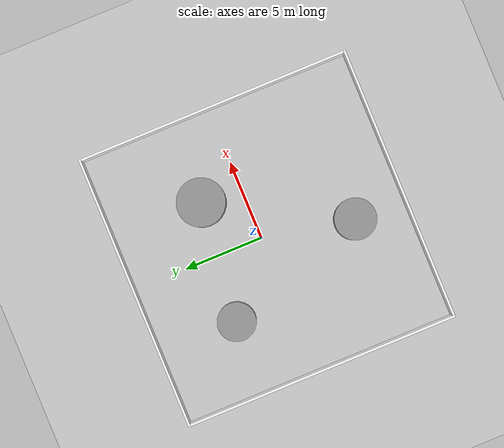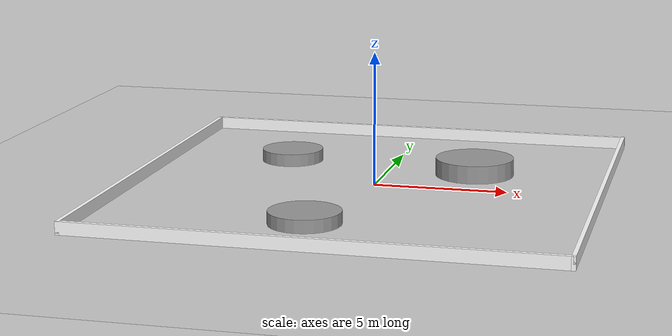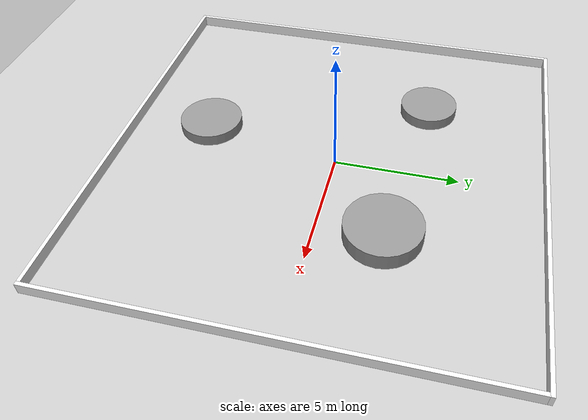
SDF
<?xml version="1.0" ?>

<sdf version="1.6">
	<world name="default">
		<!-- A global light source -->
		<include>
			<uri>model://sun</uri>
		</include>

		<!-- A ground plane -->
		<include>
			<uri>model://ground_plane</uri>
		</include>
        <physics type="ode">
        <real_time_update_rate>100.0</real_time_update_rate>
        <max_step_size>0.01</max_step_size>
        <real_time_factor>0.5</real_time_factor>
        <ode>
            <solver>
            <type>quick</type>
            <iters>150</iters>
            <precon_iters>0</precon_iters>
            <sor>1.400000</sor>
            <use_dynamic_moi_rescaling>1</use_dynamic_moi_rescaling>
            </solver>
            <constraints>
            <cfm>0.00001</cfm>
            <erp>0.2</erp>
            <contact_max_correcting_vel>2000.000000</contact_max_correcting_vel>
            <contact_surface_layer>0.01000</contact_surface_layer>
            </constraints>
        </ode>
        </physics>

        <!-- Our custom model -->
		<include>
			<uri>model://3cylinder</uri>
		</include>

        <scene>
        <ambient>0.4 0.4 0.4 1</ambient>
        <background>0.7 0.7 0.7 1</background>
        <shadows>false</shadows>
        </scene>

	</world>
</sdf>

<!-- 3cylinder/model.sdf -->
<sdf version='1.6'>
  <model name='3cylinder'>
    <link name='link_0'>
      <inertial>
        <mass>1</mass>
        <inertia>
          <ixx>0.145833</ixx>
          <ixy>0</ixy>
          <ixz>0</ixz>
          <iyy>0.145833</iyy>
          <iyz>0</iyz>
          <izz>0.125</izz>
        </inertia>
        <pose frame=''>0 0 0 0 -0 0</pose>
      </inertial>
      <pose frame=''>-0.12002 -0.189321 -0.050541 0 -0 0</pose>
      <gravity>1</gravity>
      <self_collide>0</self_collide>
      <kinematic>0</kinematic>
      <enable_wind>0</enable_wind>
      <visual name='visual'>
        <pose frame=''>-1 -5.5 0 0 -0 0</pose>
        <geometry>
          <cylinder>
            <radius>1.3</radius>
            <length>1</length>
          </cylinder>
        </geometry>
        <material>
          <lighting>1</lighting>
          <script>
            <uri>file://media/materials/scripts/gazebo.material</uri>
            <name>Gazebo/Grey</name>
          </script>
          <shader type='pixel'>
            <normal_map>__default__</normal_map>
          </shader>
          <ambient>0.3 0.3 0.3 1</ambient>
          <diffuse>0.7 0.7 0.7 1</diffuse>
          <specular>0.01 0.01 0.01 1</specular>
          <emissive>0 0 0 1</emissive>
        </material>
        <transparency>0</transparency>
        <cast_shadows>1</cast_shadows>
      </visual>
      <collision name='collision'>
        <laser_retro>0</laser_retro>
        <max_contacts>10</max_contacts>
        <pose frame=''>-1 -5.5 0 0 -0 0</pose>
        <geometry>
          <cylinder>
            <radius>1.3</radius>
            <length>1</length>
          </cylinder>
        </geometry>
        <surface>
          <friction>
            <ode>
              <mu>1</mu>
              <mu2>1</mu2>
              <fdir1>0 0 0</fdir1>
              <slip1>0</slip1>
              <slip2>0</slip2>
            </ode>
            <torsional>
              <coefficient>1</coefficient>
              <patch_radius>0</patch_radius>
              <surface_radius>0</surface_radius>
              <use_patch_radius>1</use_patch_radius>
              <ode>
                <slip>0</slip>
              </ode>
            </torsional>
          </friction>
          <bounce>
            <restitution_coefficient>0</restitution_coefficient>
            <threshold>1e+06</threshold>
          </bounce>
          <contact>
            <collide_without_contact>0</collide_without_contact>
            <collide_without_contact_bitmask>1</collide_without_contact_bitmask>
            <collide_bitmask>1</collide_bitmask>
            <ode>
              <soft_cfm>0</soft_cfm>
              <soft_erp>0.2</soft_erp>
              <kp>1e+13</kp>
              <kd>1</kd>
              <max_vel>0.01</max_vel>
              <min_depth>0</min_depth>
            </ode>
            <bullet>
              <split_impulse>1</split_impulse>
              <split_impulse_penetration_threshold>-0.01</split_impulse_penetration_threshold>
              <soft_cfm>0</soft_cfm>
              <soft_erp>0.2</soft_erp>
              <kp>1e+13</kp>
              <kd>1</kd>
            </bullet>
          </contact>
        </surface>
      </collision>
    </link>
    <link name='link_1'>
      <inertial>
        <mass>1</mass>
        <inertia>
          <ixx>0.145833</ixx>
          <ixy>0</ixy>
          <ixz>0</ixz>
          <iyy>0.145833</iyy>
          <iyz>0</iyz>
          <izz>0.125</izz>
        </inertia>
        <pose frame=''>0 0 0 0 -0 0</pose>
      </inertial>
      <pose frame=''>-0.12002 -0.189321 -0.050541 0 -0 0</pose>
      <gravity>1</gravity>
      <self_collide>0</self_collide>
      <kinematic>0</kinematic>
      <enable_wind>0</enable_wind>
      <visual name='visual'>
        <pose frame=''>-4 3.5 0 0 -0 0</pose>
        <geometry>
          <cylinder>
            <radius>1.2</radius>
            <length>1</length>
          </cylinder>
        </geometry>
        <material>
          <lighting>1</lighting>
          <script>
            <uri>file://media/materials/scripts/gazebo.material</uri>
            <name>Gazebo/Grey</name>
          </script>
          <shader type='pixel'>
            <normal_map>__default__</normal_map>
          </shader>
          <ambient>0.3 0.3 0.3 1</ambient>
          <diffuse>0.7 0.7 0.7 1</diffuse>
          <specular>0.01 0.01 0.01 1</specular>
          <emissive>0 0 0 1</emissive>
        </material>
        <transparency>0</transparency>
        <cast_shadows>1</cast_shadows>
      </visual>
      <collision name='collision'>
        <laser_retro>0</laser_retro>
        <max_contacts>10</max_contacts>
        <pose frame=''>-4 3.5 0 0 -0 0</pose>
        <geometry>
          <cylinder>
            <radius>1.2</radius>
            <length>1</length>
          </cylinder>
        </geometry>
        <surface>
          <friction>
            <ode>
              <mu>1</mu>
              <mu2>1</mu2>
              <fdir1>0 0 0</fdir1>
              <slip1>0</slip1>
              <slip2>0</slip2>
            </ode>
            <torsional>
              <coefficient>1</coefficient>
              <patch_radius>0</patch_radius>
              <surface_radius>0</surface_radius>
              <use_patch_radius>1</use_patch_radius>
              <ode>
                <slip>0</slip>
              </ode>
            </torsional>
          </friction>
          <bounce>
            <restitution_coefficient>0</restitution_coefficient>
            <threshold>1e+06</threshold>
          </bounce>
          <contact>
            <collide_without_contact>0</collide_without_contact>
            <collide_without_contact_bitmask>1</collide_without_contact_bitmask>
            <collide_bitmask>1</collide_bitmask>
            <ode>
              <soft_cfm>0</soft_cfm>
              <soft_erp>0.2</soft_erp>
              <kp>1e+13</kp>
              <kd>1</kd>
              <max_vel>0.01</max_vel>
              <min_depth>0</min_depth>
            </ode>
            <bullet>
              <split_impulse>1</split_impulse>
              <split_impulse_penetration_threshold>-0.01</split_impulse_penetration_threshold>
              <soft_cfm>0</soft_cfm>
              <soft_erp>0.2</soft_erp>
              <kp>1e+13</kp>
              <kd>1</kd>
            </bullet>
          </contact>
        </surface>
      </collision>
    </link>
    <model name='large'>
      <link name='fixed'>
        <self_collide>0</self_collide>
        <enable_wind>0</enable_wind>
        <kinematic>0</kinematic>
        <pose frame=''>0 0 0 0 -0 0</pose>
      </link>
      <link name='Wall_0'>
        <pose frame=''>0 8.64 0 0 -0 0</pose>
        <self_collide>0</self_collide>
        <enable_wind>0</enable_wind>
        <kinematic>0</kinematic>
        <visual name='Wall_0_Visual'>
          <pose frame=''>0 0 0.25 0 -0 0</pose>
          <geometry>
            <box>
              <size>17.43 0.15 0.5</size>
            </box>
          </geometry>
          <material>
            <ambient>1 1 1 1</ambient>
            <shader type='pixel'/>
            <script>
              <name>ModelPreview_1::Wall_0::Wall_0_Visual_MATERIAL_</name>
              <uri>__default__</uri>
            </script>
          </material>
          <transparency>0</transparency>
          <cast_shadows>1</cast_shadows>
        </visual>
        <collision name='Wall_0_Collision'>
          <laser_retro>0</laser_retro>
          <max_contacts>10</max_contacts>
          <pose frame=''>0 0 0.25 0 -0 0</pose>
          <geometry>
            <box>
              <size>17.43 0.15 0.5</size>
            </box>
          </geometry>
          <surface>
            <friction>
              <ode>
                <mu>1</mu>
                <mu2>1</mu2>
                <fdir1>0 0 0</fdir1>
                <slip1>0</slip1>
                <slip2>0</slip2>
              </ode>
              <torsional>
                <coefficient>1</coefficient>
                <patch_radius>0</patch_radius>
                <surface_radius>0</surface_radius>
                <use_patch_radius>1</use_patch_radius>
                <ode>
                  <slip>0</slip>
                </ode>
              </torsional>
            </friction>
            <bounce>
              <restitution_coefficient>0</restitution_coefficient>
              <threshold>1e+06</threshold>
            </bounce>
            <contact>
              <collide_without_contact>0</collide_without_contact>
              <collide_without_contact_bitmask>1</collide_without_contact_bitmask>
              <collide_bitmask>1</collide_bitmask>
              <ode>
                <soft_cfm>0</soft_cfm>
                <soft_erp>0.2</soft_erp>
                <kp>1e+13</kp>
                <kd>1</kd>
                <max_vel>0.01</max_vel>
                <min_depth>0</min_depth>
              </ode>
              <bullet>
                <split_impulse>1</split_impulse>
                <split_impulse_penetration_threshold>-0.01</split_impulse_penetration_threshold>
                <soft_cfm>0</soft_cfm>
                <soft_erp>0.2</soft_erp>
                <kp>1e+13</kp>
                <kd>1</kd>
              </bullet>
            </contact>
          </surface>
        </collision>
      </link>
      <link name='Wall_2'>
        <pose frame=''>-8.64 0 0 0 0 -1.5708</pose>
        <self_collide>0</self_collide>
        <enable_wind>0</enable_wind>
        <kinematic>0</kinematic>
        <visual name='Wall_2_Visual'>
          <pose frame=''>0 0 0.25 0 -0 0</pose>
          <geometry>
            <box>
              <size>17.43 0.15 0.5</size>
            </box>
          </geometry>
          <material>
            <ambient>1 1 1 1</ambient>
            <shader type='pixel'/>
            <script>
              <name>ModelPreview_1::Wall_2::Wall_2_Visual_MATERIAL_</name>
              <uri>__default__</uri>
            </script>
          </material>
          <transparency>0</transparency>
          <cast_shadows>1</cast_shadows>
        </visual>
        <collision name='Wall_2_Collision'>
          <laser_retro>0</laser_retro>
          <max_contacts>10</max_contacts>
          <pose frame=''>0 0 0.25 0 -0 0</pose>
          <geometry>
            <box>
              <size>17.43 0.15 0.5</size>
            </box>
          </geometry>
          <surface>
            <friction>
              <ode>
                <mu>1</mu>
                <mu2>1</mu2>
                <fdir1>0 0 0</fdir1>
                <slip1>0</slip1>
                <slip2>0</slip2>
              </ode>
              <torsional>
                <coefficient>1</coefficient>
                <patch_radius>0</patch_radius>
                <surface_radius>0</surface_radius>
                <use_patch_radius>1</use_patch_radius>
                <ode>
                  <slip>0</slip>
                </ode>
              </torsional>
            </friction>
            <bounce>
              <restitution_coefficient>0</restitution_coefficient>
              <threshold>1e+06</threshold>
            </bounce>
            <contact>
              <collide_without_contact>0</collide_without_contact>
              <collide_without_contact_bitmask>1</collide_without_contact_bitmask>
              <collide_bitmask>1</collide_bitmask>
              <ode>
                <soft_cfm>0</soft_cfm>
                <soft_erp>0.2</soft_erp>
                <kp>1e+13</kp>
                <kd>1</kd>
                <max_vel>0.01</max_vel>
                <min_depth>0</min_depth>
              </ode>
              <bullet>
                <split_impulse>1</split_impulse>
                <split_impulse_penetration_threshold>-0.01</split_impulse_penetration_threshold>
                <soft_cfm>0</soft_cfm>
                <soft_erp>0.2</soft_erp>
                <kp>1e+13</kp>
                <kd>1</kd>
              </bullet>
            </contact>
          </surface>
        </collision>
      </link>
      <link name='Wall_3'>
        <pose frame=''>0 -8.64 0 0 -0 0</pose>
        <self_collide>0</self_collide>
        <enable_wind>0</enable_wind>
        <kinematic>0</kinematic>
        <visual name='Wall_3_Visual'>
          <pose frame=''>0 0 0.25 0 -0 0</pose>
          <geometry>
            <box>
              <size>17.43 0.15 0.5</size>
            </box>
          </geometry>
          <material>
            <ambient>1 1 1 1</ambient>
            <shader type='pixel'/>
            <script>
              <name>ModelPreview_1::Wall_3::Wall_3_Visual_MATERIAL_</name>
              <uri>__default__</uri>
            </script>
          </material>
          <transparency>0</transparency>
          <cast_shadows>1</cast_shadows>
        </visual>
        <collision name='Wall_3_Collision'>
          <laser_retro>0</laser_retro>
          <max_contacts>10</max_contacts>
          <pose frame=''>0 0 0.25 0 -0 0</pose>
          <geometry>
            <box>
              <size>17.43 0.15 0.5</size>
            </box>
          </geometry>
          <surface>
            <friction>
              <ode>
                <mu>1</mu>
                <mu2>1</mu2>
                <fdir1>0 0 0</fdir1>
                <slip1>0</slip1>
                <slip2>0</slip2>
              </ode>
              <torsional>
                <coefficient>1</coefficient>
                <patch_radius>0</patch_radius>
                <surface_radius>0</surface_radius>
                <use_patch_radius>1</use_patch_radius>
                <ode>
                  <slip>0</slip>
                </ode>
              </torsional>
            </friction>
            <bounce>
              <restitution_coefficient>0</restitution_coefficient>
              <threshold>1e+06</threshold>
            </bounce>
            <contact>
              <collide_without_contact>0</collide_without_contact>
              <collide_without_contact_bitmask>1</collide_without_contact_bitmask>
              <collide_bitmask>1</collide_bitmask>
              <ode>
                <soft_cfm>0</soft_cfm>
                <soft_erp>0.2</soft_erp>
                <kp>1e+13</kp>
                <kd>1</kd>
                <max_vel>0.01</max_vel>
                <min_depth>0</min_depth>
              </ode>
              <bullet>
                <split_impulse>1</split_impulse>
                <split_impulse_penetration_threshold>-0.01</split_impulse_penetration_threshold>
                <soft_cfm>0</soft_cfm>
                <soft_erp>0.2</soft_erp>
                <kp>1e+13</kp>
                <kd>1</kd>
              </bullet>
            </contact>
          </surface>
        </collision>
      </link>
      <link name='Wall_4'>
        <pose frame=''>8.64 0 0 0 -0 1.5708</pose>
        <self_collide>0</self_collide>
        <enable_wind>0</enable_wind>
        <kinematic>0</kinematic>
        <visual name='Wall_4_Visual'>
          <pose frame=''>0 0 0.25 0 -0 0</pose>
          <geometry>
            <box>
              <size>17.43 0.15 0.5</size>
            </box>
          </geometry>
          <material>
            <ambient>1 1 1 1</ambient>
            <shader type='pixel'/>
            <script>
              <name>ModelPreview_1::Wall_4::Wall_4_Visual_MATERIAL_</name>
              <uri>__default__</uri>
            </script>
          </material>
          <transparency>0</transparency>
          <cast_shadows>1</cast_shadows>
        </visual>
        <collision name='Wall_4_Collision'>
          <laser_retro>0</laser_retro>
          <max_contacts>10</max_contacts>
          <pose frame=''>0 0 0.25 0 -0 0</pose>
          <geometry>
            <box>
              <size>17.43 0.15 0.5</size>
            </box>
          </geometry>
          <surface>
            <friction>
              <ode>
                <mu>1</mu>
                <mu2>1</mu2>
                <fdir1>0 0 0</fdir1>
                <slip1>0</slip1>
                <slip2>0</slip2>
              </ode>
              <torsional>
                <coefficient>1</coefficient>
                <patch_radius>0</patch_radius>
                <surface_radius>0</surface_radius>
                <use_patch_radius>1</use_patch_radius>
                <ode>
                  <slip>0</slip>
                </ode>
              </torsional>
            </friction>
            <bounce>
              <restitution_coefficient>0</restitution_coefficient>
              <threshold>1e+06</threshold>
            </bounce>
            <contact>
              <collide_without_contact>0</collide_without_contact>
              <collide_without_contact_bitmask>1</collide_without_contact_bitmask>
              <collide_bitmask>1</collide_bitmask>
              <ode>
                <soft_cfm>0</soft_cfm>
                <soft_erp>0.2</soft_erp>
                <kp>1e+13</kp>
                <kd>1</kd>
                <max_vel>0.01</max_vel>
                <min_depth>0</min_depth>
              </ode>
              <bullet>
                <split_impulse>1</split_impulse>
                <split_impulse_penetration_threshold>-0.01</split_impulse_penetration_threshold>
                <soft_cfm>0</soft_cfm>
                <soft_erp>0.2</soft_erp>
                <kp>1e+13</kp>
                <kd>1</kd>
              </bullet>
            </contact>
          </surface>
        </collision>
      </link>
      <static>1</static>
      <allow_auto_disable>1</allow_auto_disable>
      <pose frame=''>-0.162586 -0.294371 -0.050541 0 -0 0</pose>
    </model>
    <model name='one_cylinder'>
      <link name='link_0'>
        <inertial>
          <mass>1</mass>
          <inertia>
            <ixx>0.145833</ixx>
            <ixy>0</ixy>
            <ixz>0</ixz>
            <iyy>0.145833</iyy>
            <iyz>0</iyz>
            <izz>0.125</izz>
          </inertia>
          <pose frame=''>0 0 0 0 -0 0</pose>
        </inertial>
        <pose frame=''>-0 -0 0 0 -0 0</pose>
        <gravity>1</gravity>
        <self_collide>0</self_collide>
        <kinematic>0</kinematic>
        <enable_wind>0</enable_wind>
        <visual name='visual'>
          <pose frame=''>3 2 0 0 -0 0</pose>
          <geometry>
            <cylinder>
              <radius>1.5</radius>
              <length>1</length>
            </cylinder>
          </geometry>
          <material>
            <lighting>1</lighting>
            <script>
              <uri>file://media/materials/scripts/gazebo.material</uri>
              <name>Gazebo/Grey</name>
            </script>
            <shader type='pixel'>
              <normal_map>__default__</normal_map>
            </shader>
            <ambient>0.3 0.3 0.3 1</ambient>
            <diffuse>0.7 0.7 0.7 1</diffuse>
            <specular>0.01 0.01 0.01 1</specular>
            <emissive>0 0 0 1</emissive>
          </material>
          <transparency>0</transparency>
          <cast_shadows>1</cast_shadows>
        </visual>
        <collision name='collision'>
          <laser_retro>0</laser_retro>
          <max_contacts>10</max_contacts>
          <pose frame=''>3 2 0 0 -0 0</pose>
          <geometry>
            <cylinder>
              <radius>1.5</radius>
              <length>1</length>
            </cylinder>
          </geometry>
          <surface>
            <friction>
              <ode>
                <mu>1</mu>
                <mu2>1</mu2>
                <fdir1>0 0 0</fdir1>
                <slip1>0</slip1>
                <slip2>0</slip2>
              </ode>
              <torsional>
                <coefficient>1</coefficient>
                <patch_radius>0</patch_radius>
                <surface_radius>0</surface_radius>
                <use_patch_radius>1</use_patch_radius>
                <ode>
                  <slip>0</slip>
                </ode>
              </torsional>
            </friction>
            <bounce>
              <restitution_coefficient>0</restitution_coefficient>
              <threshold>1e+06</threshold>
            </bounce>
            <contact>
              <collide_without_contact>0</collide_without_contact>
              <collide_without_contact_bitmask>1</collide_without_contact_bitmask>
              <collide_bitmask>1</collide_bitmask>
              <ode>
                <soft_cfm>0</soft_cfm>
                <soft_erp>0.2</soft_erp>
                <kp>1e+13</kp>
                <kd>1</kd>
                <max_vel>0.01</max_vel>
                <min_depth>0</min_depth>
              </ode>
              <bullet>
                <split_impulse>1</split_impulse>
                <split_impulse_penetration_threshold>-0.01</split_impulse_penetration_threshold>
                <soft_cfm>0</soft_cfm>
                <soft_erp>0.2</soft_erp>
                <kp>1e+13</kp>
                <kd>1</kd>
              </bullet>
            </contact>
          </surface>
        </collision>
      </link>
      <static>1</static>
      <allow_auto_disable>1</allow_auto_disable>
      <pose frame=''>0.345873 0.532946 0.151622 0 -0 0</pose>
    </model>
    <static>1</static>
    <allow_auto_disable>1</allow_auto_disable>
  </model>
</sdf>
